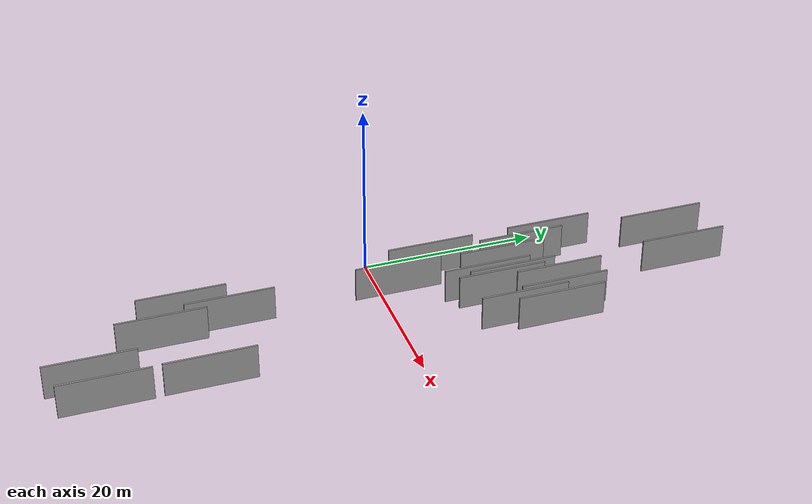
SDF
<sdf version="1.6">
 <world name="default">
  <scene>
   <sky><clouds><speed>12</speed></clouds></sky>
   <ambient>0.4 0.4 0.4 1</ambient>
   <background>0.7 0.7 0.7 1</background>
   <shadows>1</shadows>
  </scene>
  <gravity>0 0 -9.8066</gravity>
  <magnetic_field>6e-06 2.3e-05 -4.2e-05</magnetic_field>
  <physics default="0" name="default_physics" type="ode">
   <ode>
    <solver>
     <type>quick</type>
     <iters>10</iters>
     <sor>1.0</sor>
     <use_dynamic_moi_rescaling>0</use_dynamic_moi_rescaling>
    </solver>
    <constraints>
     <cfm>0</cfm>
     <erp>0.2</erp>
     <contact_max_correcting_vel>100</contact_max_correcting_vel>
     <contact_surface_layer>0.001</contact_surface_layer>
    </constraints>
   </ode>
   <max_step_size>0.004</max_step_size>
   <real_time_factor>1</real_time_factor>
   <real_time_update_rate>250</real_time_update_rate>
  </physics>
  <light name="sun" type="directional">
   <pose>0 0 10 0 0 0</pose>
   <diffuse>0.8 0.8 0.8 1</diffuse>
   <specular>0.2 0.2 0.2 1</specular>
   <attenuation>
    <range>1000</range>
    <constant>0.9</constant>
    <linear>0.01</linear>
    <quadratic>0.001</quadratic>
   </attenuation>
   <direction>-0.5 0.1 -0.9</direction>
  </light>
  <model name="grey_wall_1">
   <static>1</static>
   <pose>3.2042 21.0533 0.0 0.000000 0.000000 1.570796</pose>
   <link name="link">
    <pose>0 0 2.00 0 0 0</pose>
    <collision name="collision"><geometry><box><size>10.00 0.2 4.00</size></box></geometry></collision>
    <visual name="visual">
     <cast_shadows>0</cast_shadows>
     <geometry><box><size>10.00 0.2 4.00</size></box></geometry>
     <material>
      <script>
       <uri>model://grey_wall/materials/scripts</uri>
       <uri>model://grey_wall/materials/textures</uri>
       <name>vrc/grey_wall</name>
      </script>
     </material>
    </visual>
   </link>
  </model>
  <model name="grey_wall_2">
   <static>1</static>
   <pose>10.9452 12.3371 0.0 0.000000 0.000000 1.570796</pose>
   <link name="link">
    <pose>0 0 2.00 0 0 0</pose>
    <collision name="collision"><geometry><box><size>10.00 0.2 4.00</size></box></geometry></collision>
    <visual name="visual">
     <cast_shadows>0</cast_shadows>
     <geometry><box><size>10.00 0.2 4.00</size></box></geometry>
     <material>
      <script>
       <uri>model://grey_wall/materials/scripts</uri>
       <uri>model://grey_wall/materials/textures</uri>
       <name>vrc/grey_wall</name>
      </script>
     </material>
    </visual>
   </link>
  </model>
  <model name="grey_wall_3">
   <static>1</static>
   <pose>11.8864 18.7464 0.0 0.000000 0.000000 1.570796</pose>
   <link name="link">
    <pose>0 0 2.00 0 0 0</pose>
    <collision name="collision"><geometry><box><size>10.00 0.2 4.00</size></box></geometry></collision>
    <visual name="visual">
     <cast_shadows>0</cast_shadows>
     <geometry><box><size>10.00 0.2 4.00</size></box></geometry>
     <material>
      <script>
       <uri>model://grey_wall/materials/scripts</uri>
       <uri>model://grey_wall/materials/textures</uri>
       <name>vrc/grey_wall</name>
      </script>
     </material>
    </visual>
   </link>
  </model>
  <model name="grey_wall_4">
   <static>1</static>
   <pose>15.4226 13.2727 0.0 0.000000 0.000000 1.570796</pose>
   <link name="link">
    <pose>0 0 2.00 0 0 0</pose>
    <collision name="collision"><geometry><box><size>10.00 0.2 4.00</size></box></geometry></collision>
    <visual name="visual">
     <cast_shadows>0</cast_shadows>
     <geometry><box><size>10.00 0.2 4.00</size></box></geometry>
     <material>
      <script>
       <uri>model://grey_wall/materials/scripts</uri>
       <uri>model://grey_wall/materials/textures</uri>
       <name>vrc/grey_wall</name>
      </script>
     </material>
    </visual>
   </link>
  </model>
  <model name="grey_wall_5">
   <static>1</static>
   <pose>4.6894 17.0988 0.0 0.000000 0.000000 1.570796</pose>
   <link name="link">
    <pose>0 0 2.00 0 0 0</pose>
    <collision name="collision"><geometry><box><size>10.00 0.2 4.00</size></box></geometry></collision>
    <visual name="visual">
     <cast_shadows>0</cast_shadows>
     <geometry><box><size>10.00 0.2 4.00</size></box></geometry>
     <material>
      <script>
       <uri>model://grey_wall/materials/scripts</uri>
       <uri>model://grey_wall/materials/textures</uri>
       <name>vrc/grey_wall</name>
      </script>
     </material>
    </visual>
   </link>
  </model>
  <model name="grey_wall_6">
   <static>1</static>
   <pose>9.2612 11.2786 0.0 0.000000 0.000000 1.570796</pose>
   <link name="link">
    <pose>0 0 2.00 0 0 0</pose>
    <collision name="collision"><geometry><box><size>10.00 0.2 4.00</size></box></geometry></collision>
    <visual name="visual">
     <cast_shadows>0</cast_shadows>
     <geometry><box><size>10.00 0.2 4.00</size></box></geometry>
     <material>
      <script>
       <uri>model://grey_wall/materials/scripts</uri>
       <uri>model://grey_wall/materials/textures</uri>
       <name>vrc/grey_wall</name>
      </script>
     </material>
    </visual>
   </link>
  </model>
  <model name="grey_wall_7">
   <static>1</static>
   <pose>3.8236 -22.0837 0.0 0.000000 0.000000 1.570796</pose>
   <link name="link">
    <pose>0 0 2.00 0 0 0</pose>
    <collision name="collision"><geometry><box><size>10.00 0.2 4.00</size></box></geometry></collision>
    <visual name="visual">
     <cast_shadows>0</cast_shadows>
     <geometry><box><size>10.00 0.2 4.00</size></box></geometry>
     <material>
      <script>
       <uri>model://grey_wall/materials/scripts</uri>
       <uri>model://grey_wall/materials/textures</uri>
       <name>vrc/grey_wall</name>
      </script>
     </material>
    </visual>
   </link>
  </model>
  <model name="grey_wall_8">
   <static>1</static>
   <pose>5.3517 34.2824 0.0 0.000000 0.000000 1.570796</pose>
   <link name="link">
    <pose>0 0 2.00 0 0 0</pose>
    <collision name="collision"><geometry><box><size>10.00 0.2 4.00</size></box></geometry></collision>
    <visual name="visual">
     <cast_shadows>0</cast_shadows>
     <geometry><box><size>10.00 0.2 4.00</size></box></geometry>
     <material>
      <script>
       <uri>model://grey_wall/materials/scripts</uri>
       <uri>model://grey_wall/materials/textures</uri>
       <name>vrc/grey_wall</name>
      </script>
     </material>
    </visual>
   </link>
  </model>
  <model name="grey_wall_9">
   <static>1</static>
   <pose>10.2132 13.8691 0.0 0.000000 0.000000 1.570796</pose>
   <link name="link">
    <pose>0 0 2.00 0 0 0</pose>
    <collision name="collision"><geometry><box><size>10.00 0.2 4.00</size></box></geometry></collision>
    <visual name="visual">
     <cast_shadows>0</cast_shadows>
     <geometry><box><size>10.00 0.2 4.00</size></box></geometry>
     <material>
      <script>
       <uri>model://grey_wall/materials/scripts</uri>
       <uri>model://grey_wall/materials/textures</uri>
       <name>vrc/grey_wall</name>
      </script>
     </material>
    </visual>
   </link>
  </model>
  <model name="grey_wall_10">
   <static>1</static>
   <pose>12.3492 -33.4831 0.0 0.000000 0.000000 1.570796</pose>
   <link name="link">
    <pose>0 0 2.00 0 0 0</pose>
    <collision name="collision"><geometry><box><size>10.00 0.2 4.00</size></box></geometry></collision>
    <visual name="visual">
     <cast_shadows>0</cast_shadows>
     <geometry><box><size>10.00 0.2 4.00</size></box></geometry>
     <material>
      <script>
       <uri>model://grey_wall/materials/scripts</uri>
       <uri>model://grey_wall/materials/textures</uri>
       <name>vrc/grey_wall</name>
      </script>
     </material>
    </visual>
   </link>
  </model>
  <model name="grey_wall_11">
   <static>1</static>
   <pose>6.1510 -17.2649 0.0 0.000000 0.000000 1.570796</pose>
   <link name="link">
    <pose>0 0 2.00 0 0 0</pose>
    <collision name="collision"><geometry><box><size>10.00 0.2 4.00</size></box></geometry></collision>
    <visual name="visual">
     <cast_shadows>0</cast_shadows>
     <geometry><box><size>10.00 0.2 4.00</size></box></geometry>
     <material>
      <script>
       <uri>model://grey_wall/materials/scripts</uri>
       <uri>model://grey_wall/materials/textures</uri>
       <name>vrc/grey_wall</name>
      </script>
     </material>
    </visual>
   </link>
  </model>
  <model name="grey_wall_12">
   <static>1</static>
   <pose>15.7927 -21.6719 0.0 0.000000 0.000000 1.570796</pose>
   <link name="link">
    <pose>0 0 2.00 0 0 0</pose>
    <collision name="collision"><geometry><box><size>10.00 0.2 4.00</size></box></geometry></collision>
    <visual name="visual">
     <cast_shadows>0</cast_shadows>
     <geometry><box><size>10.00 0.2 4.00</size></box></geometry>
     <material>
      <script>
       <uri>model://grey_wall/materials/scripts</uri>
       <uri>model://grey_wall/materials/textures</uri>
       <name>vrc/grey_wall</name>
      </script>
     </material>
    </visual>
   </link>
  </model>
  <model name="grey_wall_13">
   <static>1</static>
   <pose>6.4807 14.1033 0.0 0.000000 0.000000 1.570796</pose>
   <link name="link">
    <pose>0 0 2.00 0 0 0</pose>
    <collision name="collision"><geometry><box><size>10.00 0.2 4.00</size></box></geometry></collision>
    <visual name="visual">
     <cast_shadows>0</cast_shadows>
     <geometry><box><size>10.00 0.2 4.00</size></box></geometry>
     <material>
      <script>
       <uri>model://grey_wall/materials/scripts</uri>
       <uri>model://grey_wall/materials/textures</uri>
       <name>vrc/grey_wall</name>
      </script>
     </material>
    </visual>
   </link>
  </model>
  <model name="grey_wall_14">
   <static>1</static>
   <pose>14.7194 18.1837 0.0 0.000000 0.000000 1.570796</pose>
   <link name="link">
    <pose>0 0 2.00 0 0 0</pose>
    <collision name="collision"><geometry><box><size>10.00 0.2 4.00</size></box></geometry></collision>
    <visual name="visual">
     <cast_shadows>0</cast_shadows>
     <geometry><box><size>10.00 0.2 4.00</size></box></geometry>
     <material>
      <script>
       <uri>model://grey_wall/materials/scripts</uri>
       <uri>model://grey_wall/materials/textures</uri>
       <name>vrc/grey_wall</name>
      </script>
     </material>
    </visual>
   </link>
  </model>
  <model name="grey_wall_15">
   <static>1</static>
   <pose>3.2721 6.6997 0.0 0.000000 0.000000 1.570796</pose>
   <link name="link">
    <pose>0 0 2.00 0 0 0</pose>
    <collision name="collision"><geometry><box><size>10.00 0.2 4.00</size></box></geometry></collision>
    <visual name="visual">
     <cast_shadows>0</cast_shadows>
     <geometry><box><size>10.00 0.2 4.00</size></box></geometry>
     <material>
      <script>
       <uri>model://grey_wall/materials/scripts</uri>
       <uri>model://grey_wall/materials/textures</uri>
       <name>vrc/grey_wall</name>
      </script>
     </material>
    </visual>
   </link>
  </model>
  <model name="grey_wall_16">
   <static>1</static>
   <pose>15.8923 -32.6658 0.0 0.000000 0.000000 1.570796</pose>
   <link name="link">
    <pose>0 0 2.00 0 0 0</pose>
    <collision name="collision"><geometry><box><size>10.00 0.2 4.00</size></box></geometry></collision>
    <visual name="visual">
     <cast_shadows>0</cast_shadows>
     <geometry><box><size>10.00 0.2 4.00</size></box></geometry>
     <material>
      <script>
       <uri>model://grey_wall/materials/scripts</uri>
       <uri>model://grey_wall/materials/textures</uri>
       <name>vrc/grey_wall</name>
      </script>
     </material>
    </visual>
   </link>
  </model>
  <model name="grey_wall_17">
   <static>1</static>
   <pose>10.7638 34.4642 0.0 0.000000 0.000000 1.570796</pose>
   <link name="link">
    <pose>0 0 2.00 0 0 0</pose>
    <collision name="collision"><geometry><box><size>10.00 0.2 4.00</size></box></geometry></collision>
    <visual name="visual">
     <cast_shadows>0</cast_shadows>
     <geometry><box><size>10.00 0.2 4.00</size></box></geometry>
     <material>
      <script>
       <uri>model://grey_wall/materials/scripts</uri>
       <uri>model://grey_wall/materials/textures</uri>
       <name>vrc/grey_wall</name>
      </script>
     </material>
    </visual>
   </link>
  </model>
  <model name="grey_wall_18">
   <static>1</static>
   <pose>5.7923 2.0256 0.0 0.000000 0.000000 1.570796</pose>
   <link name="link">
    <pose>0 0 2.00 0 0 0</pose>
    <collision name="collision"><geometry><box><size>10.00 0.2 4.00</size></box></geometry></collision>
    <visual name="visual">
     <cast_shadows>0</cast_shadows>
     <geometry><box><size>10.00 0.2 4.00</size></box></geometry>
     <material>
      <script>
       <uri>model://grey_wall/materials/scripts</uri>
       <uri>model://grey_wall/materials/textures</uri>
       <name>vrc/grey_wall</name>
      </script>
     </material>
    </visual>
   </link>
  </model>
  <model name="grey_wall_19">
   <static>1</static>
   <pose>7.4054 -25.0261 0.0 0.000000 0.000000 1.570796</pose>
   <link name="link">
    <pose>0 0 2.00 0 0 0</pose>
    <collision name="collision"><geometry><box><size>10.00 0.2 4.00</size></box></geometry></collision>
    <visual name="visual">
     <cast_shadows>0</cast_shadows>
     <geometry><box><size>10.00 0.2 4.00</size></box></geometry>
     <material>
      <script>
       <uri>model://grey_wall/materials/scripts</uri>
       <uri>model://grey_wall/materials/textures</uri>
       <name>vrc/grey_wall</name>
      </script>
     </material>
    </visual>
   </link>
  </model>
  <model name="grey_wall_20">
   <static>1</static>
   <pose>16.7255 17.0262 0.0 0.000000 0.000000 1.570796</pose>
   <link name="link">
    <pose>0 0 2.00 0 0 0</pose>
    <collision name="collision"><geometry><box><size>10.00 0.2 4.00</size></box></geometry></collision>
    <visual name="visual">
     <cast_shadows>0</cast_shadows>
     <geometry><box><size>10.00 0.2 4.00</size></box></geometry>
     <material>
      <script>
       <uri>model://grey_wall/materials/scripts</uri>
       <uri>model://grey_wall/materials/textures</uri>
       <name>vrc/grey_wall</name>
      </script>
     </material>
    </visual>
   </link>
  </model>
 </world>
</sdf>
